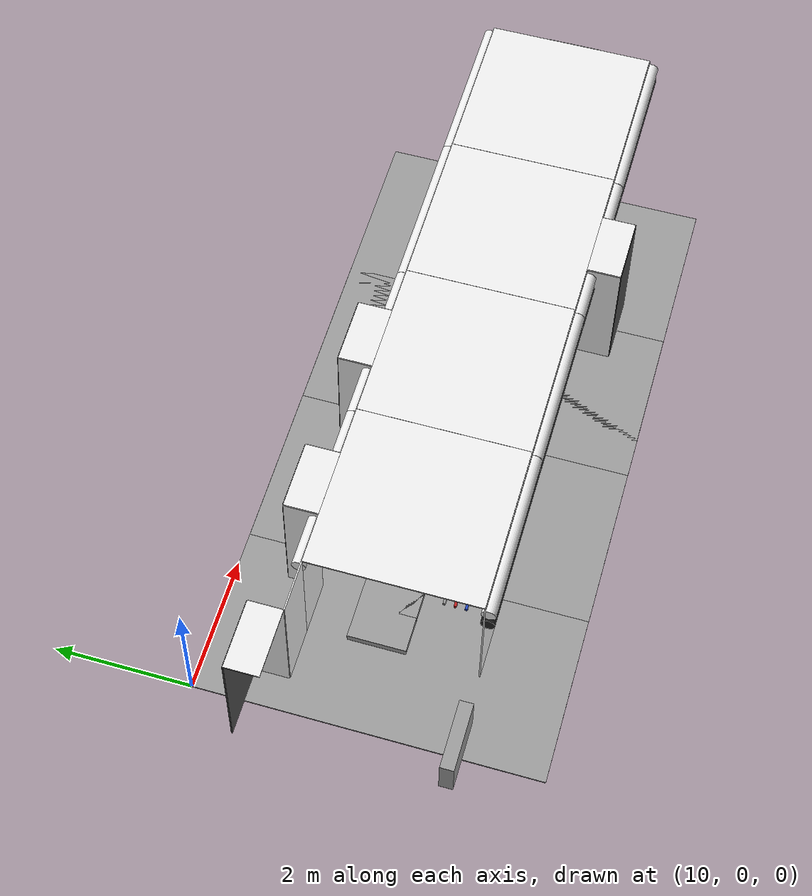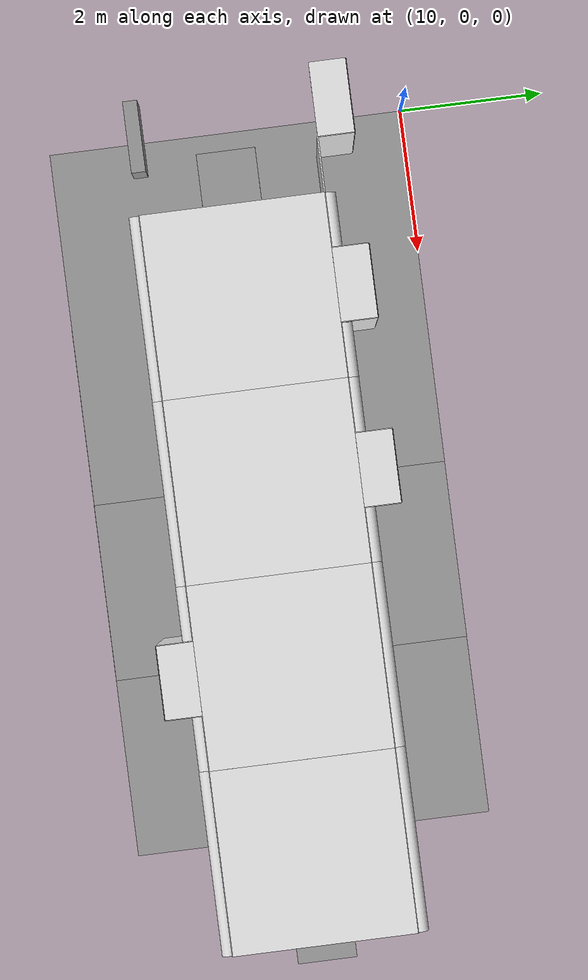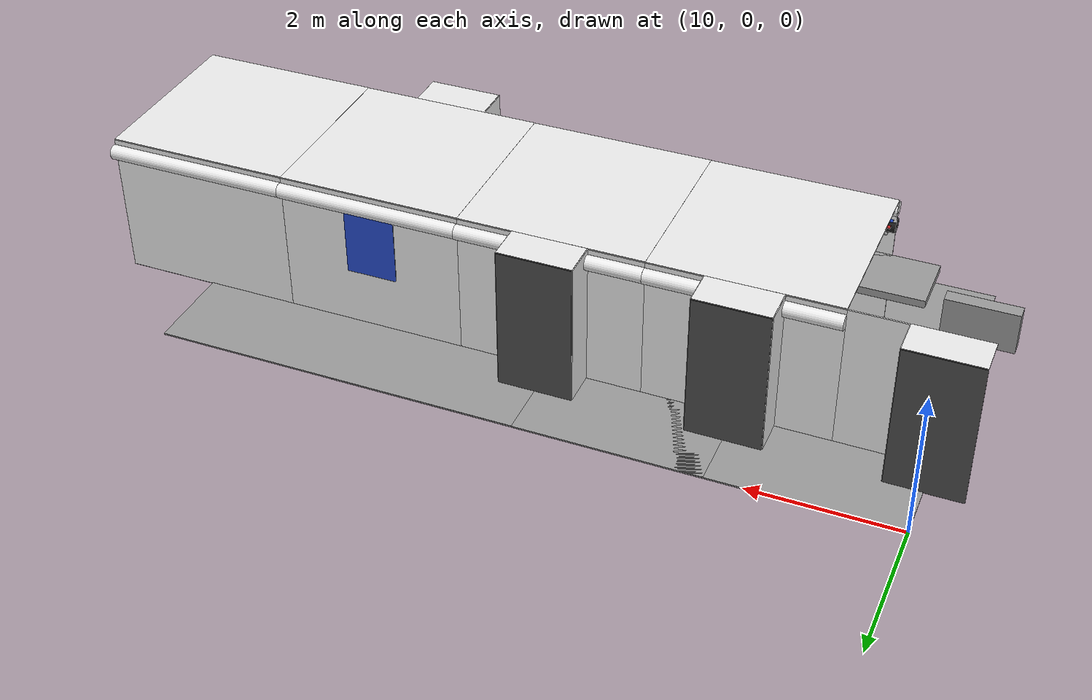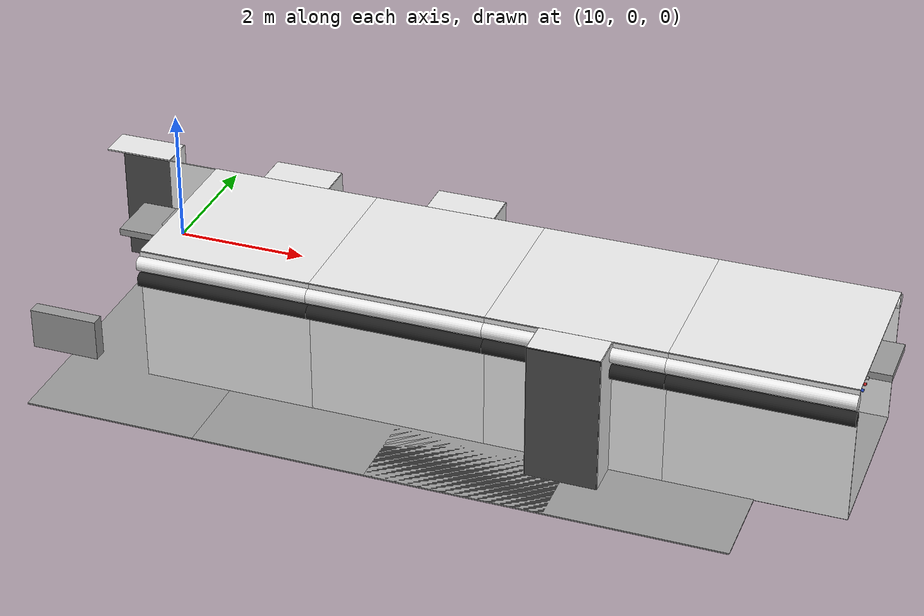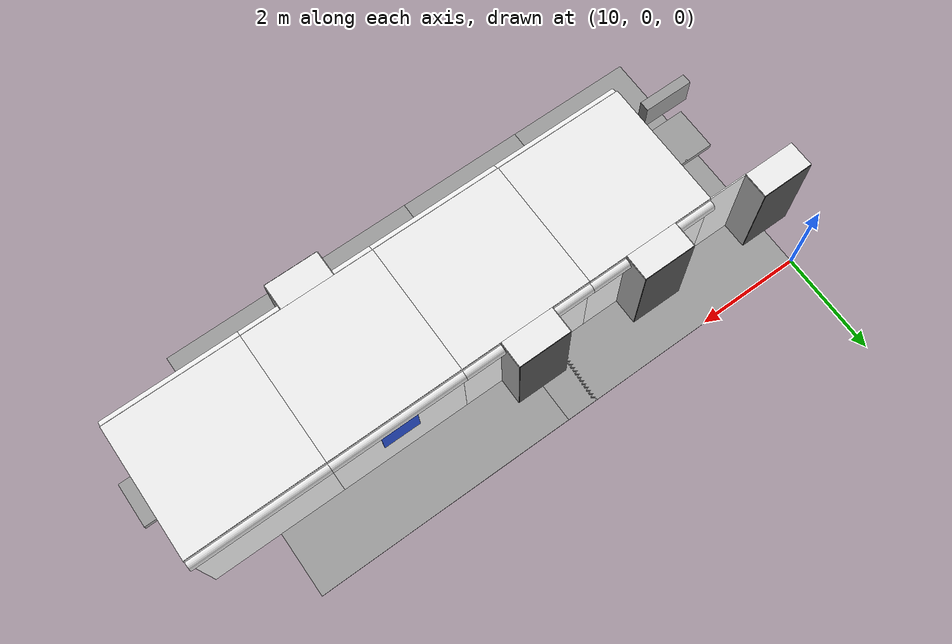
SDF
<sdf version="1.6">
 <world name="default">
  <model name="ceiling_1_4_-1_2_1">
   <pose>11.0 -2.5 1.7 0.0 0.0 -1.57</pose>
   <link name="link_1">
    <visual name="visual">
     <geometry><box><size>0.8 1 0.1</size></box></geometry>
     <material>
      <script><uri>file://media/materials/scripts/gazebo.material</uri><name>Gazebo/Grey</name></script>
     </material>
    </visual>
    <collision name="collision"><geometry><box><size>0.8 1 0.1</size></box></geometry></collision>
   </link>
   <static>1</static>
  </model>
  <model name="wall_left_front_left_4_-1_0_1">
   <static>1</static>
   <pose>10.875 -1.25 1.0 0.0 0.0 0.0</pose>
   <link name="link">
    <collision name="collision"><geometry><box><size>0.75 0.02 2.0</size></box></geometry></collision>
    <visual name="visual">
     <material>
      <script><name>Gazebo/White</name><uri>file://media/materials/scripts/gazebo.material</uri></script>
     </material>
     <geometry><box><size>0.75 0.02 2.0</size></box></geometry>
    </visual>
   </link>
  </model>
  <model name="wall_left_inside_back_4_-1_0_1">
   <static>1</static>
   <pose>10.0 -0.75 1.0 0.0 0.0 0.0</pose>
   <link name="link">
    <collision name="collision"><geometry><box><size>1 0.02 2</size></box></geometry></collision>
    <visual name="visual">
     <material>
      <script><name>Gazebo/DarkGrey</name><uri>file://media/materials/scripts/gazebo.material</uri></script>
     </material>
     <geometry><box><size>1 0.02 2</size></box></geometry>
    </visual>
   </link>
  </model>
  <model name="wall_left_inside_left_4_-1_0_1">
   <static>1</static>
   <pose>10.5 -1.0 1.0 0.0 0.0 -1.57</pose>
   <link name="link">
    <collision name="collision"><geometry><box><size>0.5 0.02 2</size></box></geometry></collision>
    <visual name="visual">
     <material>
      <script><name>Gazebo/White</name><uri>file://media/materials/scripts/gazebo.material</uri></script>
     </material>
     <geometry><box><size>0.5 0.02 2</size></box></geometry>
    </visual>
   </link>
  </model>
  <model name="wall_left_inside_top_4_-1_0_1">
   <static>1</static>
   <pose>10.0 -1.0 2.0 1.57 0.0 0.0</pose>
   <link name="link">
    <collision name="collision"><geometry><box><size>1 0.02 0.5</size></box></geometry></collision>
    <visual name="visual">
     <material>
      <script><name>Gazebo/White</name><uri>file://media/materials/scripts/gazebo.material</uri></script>
     </material>
     <geometry><box><size>1 0.02 0.5</size></box></geometry>
    </visual>
   </link>
  </model>
  <model name="panel_4_-1_0_1">
   <static>1</static>
   <pose>10.0 -3.75 0.44 0.0 0.0 -1.57</pose>
   <link name="link">
    <collision name="collision"><geometry><box><size>0.2 1 0.6</size></box></geometry></collision>
    <visual name="visual">
     <material>
      <script><name>Gazebo/Grey</name><uri>file://media/materials/scripts/gazebo.material</uri></script>
     </material>
     <geometry><box><size>0.2 1 0.6</size></box></geometry>
    </visual>
   </link>
  </model>
  <model name="wall_right_5_-1_0_1">
   <static>1</static>
   <pose>12.5 -3.75 1.0 0.0 0.0 0.0</pose>
   <link name="link">
    <collision name="collision"><geometry><box><size>2.5 0.02 2.0</size></box></geometry></collision>
    <visual name="visual">
     <material>
      <script><name>Gazebo/White</name><uri>file://media/materials/scripts/gazebo.material</uri></script>
     </material>
     <geometry><box><size>2.5 0.02 2.0</size></box></geometry>
    </visual>
   </link>
  </model>
  <model name="wall_top_5_-1_0_1">
   <static>1</static>
   <pose>12.5 -2.5 2.0 1.57 0.0 -1.57</pose>
   <link name="link">
    <collision name="collision"><geometry><box><size>2.5 0.02 2.5</size></box></geometry></collision>
    <visual name="visual">
     <material>
      <script><name>Gazebo/White</name><uri>file://media/materials/scripts/gazebo.material</uri></script>
     </material>
     <geometry><box><size>2.5 0.02 2.5</size></box></geometry>
    </visual>
   </link>
  </model>
  <model name="ceiling_1_5_-1_0_1">
   <pose>12.5 -2.5 1.7 0.0 0.0 -1.57</pose>
   <link name="link_1">
    <visual name="visual">
     <geometry><box><size>0.8 1 0.1</size></box></geometry>
     <material>
      <script><uri>file://media/materials/scripts/gazebo.material</uri><name>Gazebo/Grey</name></script>
     </material>
    </visual>
    <collision name="collision"><geometry><box><size>0.8 1 0.1</size></box></geometry></collision>
   </link>
   <static>1</static>
  </model>
  <model name="ceiling_1_5_-1_1_1">
   <pose>11.5 -2.5 1.7 0.0 0.0 -1.57</pose>
   <link name="link_1">
    <visual name="visual">
     <geometry><box><size>0.8 1 0.1</size></box></geometry>
     <material>
      <script><uri>file://media/materials/scripts/gazebo.material</uri><name>Gazebo/Grey</name></script>
     </material>
    </visual>
    <collision name="collision"><geometry><box><size>0.8 1 0.1</size></box></geometry></collision>
   </link>
   <static>1</static>
  </model>
  <model name="ceiling_1_5_-1_2_1">
   <pose>13.5 -2.5 1.7 0.0 0.0 -1.57</pose>
   <link name="link_1">
    <visual name="visual">
     <geometry><box><size>0.8 1 0.1</size></box></geometry>
     <material>
      <script><uri>file://media/materials/scripts/gazebo.material</uri><name>Gazebo/Grey</name></script>
     </material>
    </visual>
    <collision name="collision"><geometry><box><size>0.8 1 0.1</size></box></geometry></collision>
   </link>
   <static>1</static>
  </model>
  <model name="white_pipe_left_5_-1_0_1">
   <static>1</static>
   <pose>12.5 -2.5 1.84 0.0 0.0 -1.57</pose>
   <link name="link_0">
    <visual name="visual">
     <pose>-1.3 0 0 1.57 0 0</pose>
     <geometry><cylinder><radius>0.1</radius><length>2.5</length></cylinder></geometry>
     <material>
      <script><uri>file://media/materials/scripts/gazebo.material</uri><name>Gazebo/White</name></script>
     </material>
    </visual>
    <collision name="collision">
     <pose>-1.3 0 0 1.57 0 0</pose>
     <geometry><cylinder><radius>0.1</radius><length>2.5</length></cylinder></geometry>
    </collision>
   </link>
  </model>
  <model name="white_pipe_right_5_-1_0_1">
   <static>1</static>
   <pose>12.5 -2.5 1.84 0.0 0.0 -1.57</pose>
   <link name="link_0">
    <visual name="visual">
     <pose>1.3 0 0 1.57 0 0</pose>
     <geometry><cylinder><radius>0.1</radius><length>2.5</length></cylinder></geometry>
     <material>
      <script><uri>file://media/materials/scripts/gazebo.material</uri><name>Gazebo/White</name></script>
     </material>
    </visual>
    <collision name="collision">
     <pose>1.3 0 0 1.57 0 0</pose>
     <geometry><cylinder><radius>0.1</radius><length>2.5</length></cylinder></geometry>
    </collision>
   </link>
  </model>
  <model name="black_pipe_right_5_-1_0_1">
   <static>1</static>
   <pose>12.5 -2.5 1.84 0.0 0.0 -1.57</pose>
   <link name="link_0">
    <visual name="visual">
     <pose>1.3 0 -0.25 1.57 0 0</pose>
     <geometry><cylinder><radius>0.1</radius><length>2.5</length></cylinder></geometry>
     <material>
      <script><uri>file://media/materials/scripts/gazebo.material</uri><name>Gazebo/Black</name></script>
     </material>
    </visual>
    <collision name="collision">
     <pose>1.3 0 -0.25 1.57 0 0</pose>
     <geometry><cylinder><radius>0.1</radius><length>2.5</length></cylinder></geometry>
    </collision>
   </link>
  </model>
  <model name="grey_pipe_right_5_-1_0_1">
   <static>1</static>
   <pose>12.5 -2.5 1.84 0.0 0.0 -1.57</pose>
   <link name="link_0">
    <visual name="visual">
     <pose>0.7 0 0 1.57 0 0</pose>
     <geometry><cylinder><radius>0.02</radius><length>2.5</length></cylinder></geometry>
     <material>
      <script><uri>file://media/materials/scripts/gazebo.material</uri><name>Gazebo/Grey</name></script>
     </material>
    </visual>
    <collision name="collision">
     <pose>0.7 0 0 1.57 0 0</pose>
     <geometry><cylinder><radius>0.02</radius><length>2.5</length></cylinder></geometry>
    </collision>
   </link>
  </model>
  <model name="red_pipe_right_5_-1_0_1">
   <static>1</static>
   <pose>12.5 -2.5 1.84 0.0 0.0 -1.57</pose>
   <link name="link_0">
    <visual name="visual">
     <pose>0.85 0 0 1.57 0 0</pose>
     <geometry><cylinder><radius>0.02</radius><length>2.5</length></cylinder></geometry>
     <material>
      <script><uri>file://media/materials/scripts/gazebo.material</uri><name>Gazebo/Red</name></script>
     </material>
    </visual>
    <collision name="collision">
     <pose>0.85 0 0 1.57 0 0</pose>
     <geometry><cylinder><radius>0.02</radius><length>2.5</length></cylinder></geometry>
    </collision>
   </link>
  </model>
  <model name="blue_pipe_right_5_-1_0_1">
   <static>1</static>
   <pose>12.5 -2.5 1.84 0.0 0.0 -1.57</pose>
   <link name="link_0">
    <visual name="visual">
     <pose>1 0 0 1.57 0 0</pose>
     <geometry><cylinder><radius>0.02</radius><length>2.5</length></cylinder></geometry>
     <material>
      <script><uri>file://media/materials/scripts/gazebo.material</uri><name>Gazebo/Blue</name></script>
     </material>
    </visual>
    <collision name="collision">
     <pose>1 0 0 1.57 0 0</pose>
     <geometry><cylinder><radius>0.02</radius><length>2.5</length></cylinder></geometry>
    </collision>
   </link>
  </model>
  <model name="wall_left_front_left_5_-1_0_1">
   <static>1</static>
   <pose>13.375 -1.25 1.0 0.0 0.0 0.0</pose>
   <link name="link">
    <collision name="collision"><geometry><box><size>0.75 0.02 2.0</size></box></geometry></collision>
    <visual name="visual">
     <material>
      <script><name>Gazebo/White</name><uri>file://media/materials/scripts/gazebo.material</uri></script>
     </material>
     <geometry><box><size>0.75 0.02 2.0</size></box></geometry>
    </visual>
   </link>
  </model>
  <model name="wall_left_front_right_5_-1_0_1">
   <static>1</static>
   <pose>11.625 -1.25 1.0 0.0 0.0 0.0</pose>
   <link name="link">
    <collision name="collision"><geometry><box><size>0.75 0.02 2.0</size></box></geometry></collision>
    <visual name="visual">
     <material>
      <script><name>Gazebo/White</name><uri>file://media/materials/scripts/gazebo.material</uri></script>
     </material>
     <geometry><box><size>0.75 0.02 2.0</size></box></geometry>
    </visual>
   </link>
  </model>
  <model name="wall_left_front_up_5_-1_0_1">
   <static>1</static>
   <pose>12.5 -1.25 2.0 0.0 0.0 0.0</pose>
   <link name="link">
    <collision name="collision"><geometry><box><size>1.0 0.02 0.001</size></box></geometry></collision>
    <visual name="visual">
     <material>
      <script><name>Gazebo/White</name><uri>file://media/materials/scripts/gazebo.material</uri></script>
     </material>
     <geometry><box><size>1.0 0.02 0.001</size></box></geometry>
    </visual>
   </link>
  </model>
  <model name="wall_left_inside_back_5_-1_0_1">
   <static>1</static>
   <pose>12.5 -0.75 1.0 0.0 0.0 0.0</pose>
   <link name="link">
    <collision name="collision"><geometry><box><size>1 0.02 2</size></box></geometry></collision>
    <visual name="visual">
     <material>
      <script><name>Gazebo/DarkGrey</name><uri>file://media/materials/scripts/gazebo.material</uri></script>
     </material>
     <geometry><box><size>1 0.02 2</size></box></geometry>
    </visual>
   </link>
  </model>
  <model name="wall_left_inside_left_5_-1_0_1">
   <static>1</static>
   <pose>13.0 -1.0 1.0 0.0 0.0 -1.57</pose>
   <link name="link">
    <collision name="collision"><geometry><box><size>0.5 0.02 2</size></box></geometry></collision>
    <visual name="visual">
     <material>
      <script><name>Gazebo/White</name><uri>file://media/materials/scripts/gazebo.material</uri></script>
     </material>
     <geometry><box><size>0.5 0.02 2</size></box></geometry>
    </visual>
   </link>
  </model>
  <model name="wall_left_inside_right_5_-1_0_1">
   <static>1</static>
   <pose>12.0 -1.0 1.0 0.0 0.0 -1.57</pose>
   <link name="link">
    <collision name="collision"><geometry><box><size>0.5 0.02 2</size></box></geometry></collision>
    <visual name="visual">
     <material>
      <script><name>Gazebo/White</name><uri>file://media/materials/scripts/gazebo.material</uri></script>
     </material>
     <geometry><box><size>0.5 0.02 2</size></box></geometry>
    </visual>
   </link>
  </model>
  <model name="wall_left_inside_top_5_-1_0_1">
   <static>1</static>
   <pose>12.5 -1.0 2.0 1.57 0.0 0.0</pose>
   <link name="link">
    <collision name="collision"><geometry><box><size>1 0.02 0.5</size></box></geometry></collision>
    <visual name="visual">
     <material>
      <script><name>Gazebo/White</name><uri>file://media/materials/scripts/gazebo.material</uri></script>
     </material>
     <geometry><box><size>1 0.02 0.5</size></box></geometry>
    </visual>
   </link>
  </model>
  <model name="wall_bottom_5_-1_0_1">
   <static>1</static>
   <pose>12.5 -2.5 0.0 0.0 0.0 -1.57</pose>
   <link name="link">
    <collision name="collision"><geometry><box><size>5.0 5.0 0.02</size></box></geometry></collision>
    <visual name="visual">
     <material>
      <script><name>Gazebo/Grey</name><uri>file://media/materials/scripts/gazebo.material</uri></script>
     </material>
     <geometry><box><size>5.0 5.0 0.02</size></box></geometry>
    </visual>
   </link>
  </model>
  <model name="wall_right_6_-1_0_1">
   <static>1</static>
   <pose>15.0 -3.75 1.0 0.0 0.0 0.0</pose>
   <link name="link">
    <collision name="collision"><geometry><box><size>2.5 0.02 2.0</size></box></geometry></collision>
    <visual name="visual">
     <material>
      <script><name>Gazebo/White</name><uri>file://media/materials/scripts/gazebo.material</uri></script>
     </material>
     <geometry><box><size>2.5 0.02 2.0</size></box></geometry>
    </visual>
   </link>
  </model>
  <model name="wall_top_6_-1_0_1">
   <static>1</static>
   <pose>15.0 -2.5 2.0 1.57 0.0 -1.57</pose>
   <link name="link">
    <collision name="collision"><geometry><box><size>2.5 0.02 2.5</size></box></geometry></collision>
    <visual name="visual">
     <material>
      <script><name>Gazebo/White</name><uri>file://media/materials/scripts/gazebo.material</uri></script>
     </material>
     <geometry><box><size>2.5 0.02 2.5</size></box></geometry>
    </visual>
   </link>
  </model>
  <model name="ceiling_1_6_-1_0_1">
   <pose>15.0 -2.5 1.7 0.0 0.0 -1.57</pose>
   <link name="link_1">
    <visual name="visual">
     <geometry><box><size>0.8 1 0.1</size></box></geometry>
     <material>
      <script><uri>file://media/materials/scripts/gazebo.material</uri><name>Gazebo/Grey</name></script>
     </material>
    </visual>
    <collision name="collision"><geometry><box><size>0.8 1 0.1</size></box></geometry></collision>
   </link>
   <static>1</static>
  </model>
  <model name="ceiling_1_6_-1_1_1">
   <pose>14.0 -2.5 1.7 0.0 0.0 -1.57</pose>
   <link name="link_1">
    <visual name="visual">
     <geometry><box><size>0.8 1 0.1</size></box></geometry>
     <material>
      <script><uri>file://media/materials/scripts/gazebo.material</uri><name>Gazebo/Grey</name></script>
     </material>
    </visual>
    <collision name="collision"><geometry><box><size>0.8 1 0.1</size></box></geometry></collision>
   </link>
   <static>1</static>
  </model>
  <model name="ceiling_1_6_-1_2_1">
   <pose>16.0 -2.5 1.7 0.0 0.0 -1.57</pose>
   <link name="link_1">
    <visual name="visual">
     <geometry><box><size>0.8 1 0.1</size></box></geometry>
     <material>
      <script><uri>file://media/materials/scripts/gazebo.material</uri><name>Gazebo/Grey</name></script>
     </material>
    </visual>
    <collision name="collision"><geometry><box><size>0.8 1 0.1</size></box></geometry></collision>
   </link>
   <static>1</static>
  </model>
  <model name="white_pipe_left_6_-1_0_1">
   <static>1</static>
   <pose>15.0 -2.5 1.84 0.0 0.0 -1.57</pose>
   <link name="link_0">
    <visual name="visual">
     <pose>-1.3 0 0 1.57 0 0</pose>
     <geometry><cylinder><radius>0.1</radius><length>2.5</length></cylinder></geometry>
     <material>
      <script><uri>file://media/materials/scripts/gazebo.material</uri><name>Gazebo/White</name></script>
     </material>
    </visual>
    <collision name="collision">
     <pose>-1.3 0 0 1.57 0 0</pose>
     <geometry><cylinder><radius>0.1</radius><length>2.5</length></cylinder></geometry>
    </collision>
   </link>
  </model>
  <model name="white_pipe_right_6_-1_0_1">
   <static>1</static>
   <pose>15.0 -2.5 1.84 0.0 0.0 -1.57</pose>
   <link name="link_0">
    <visual name="visual">
     <pose>1.3 0 0 1.57 0 0</pose>
     <geometry><cylinder><radius>0.1</radius><length>2.5</length></cylinder></geometry>
     <material>
      <script><uri>file://media/materials/scripts/gazebo.material</uri><name>Gazebo/White</name></script>
     </material>
    </visual>
    <collision name="collision">
     <pose>1.3 0 0 1.57 0 0</pose>
     <geometry><cylinder><radius>0.1</radius><length>2.5</length></cylinder></geometry>
    </collision>
   </link>
  </model>
  <model name="black_pipe_right_6_-1_0_1">
   <static>1</static>
   <pose>15.0 -2.5 1.84 0.0 0.0 -1.57</pose>
   <link name="link_0">
    <visual name="visual">
     <pose>1.3 0 -0.25 1.57 0 0</pose>
     <geometry><cylinder><radius>0.1</radius><length>2.5</length></cylinder></geometry>
     <material>
      <script><uri>file://media/materials/scripts/gazebo.material</uri><name>Gazebo/Black</name></script>
     </material>
    </visual>
    <collision name="collision">
     <pose>1.3 0 -0.25 1.57 0 0</pose>
     <geometry><cylinder><radius>0.1</radius><length>2.5</length></cylinder></geometry>
    </collision>
   </link>
  </model>
  <model name="grey_pipe_right_6_-1_0_1">
   <static>1</static>
   <pose>15.0 -2.5 1.84 0.0 0.0 -1.57</pose>
   <link name="link_0">
    <visual name="visual">
     <pose>0.7 0 0 1.57 0 0</pose>
     <geometry><cylinder><radius>0.02</radius><length>2.5</length></cylinder></geometry>
     <material>
      <script><uri>file://media/materials/scripts/gazebo.material</uri><name>Gazebo/Grey</name></script>
     </material>
    </visual>
    <collision name="collision">
     <pose>0.7 0 0 1.57 0 0</pose>
     <geometry><cylinder><radius>0.02</radius><length>2.5</length></cylinder></geometry>
    </collision>
   </link>
  </model>
  <model name="red_pipe_right_6_-1_0_1">
   <static>1</static>
   <pose>15.0 -2.5 1.84 0.0 0.0 -1.57</pose>
   <link name="link_0">
    <visual name="visual">
     <pose>0.85 0 0 1.57 0 0</pose>
     <geometry><cylinder><radius>0.02</radius><length>2.5</length></cylinder></geometry>
     <material>
      <script><uri>file://media/materials/scripts/gazebo.material</uri><name>Gazebo/Red</name></script>
     </material>
    </visual>
    <collision name="collision">
     <pose>0.85 0 0 1.57 0 0</pose>
     <geometry><cylinder><radius>0.02</radius><length>2.5</length></cylinder></geometry>
    </collision>
   </link>
  </model>
  <model name="blue_pipe_right_6_-1_0_1">
   <static>1</static>
   <pose>15.0 -2.5 1.84 0.0 0.0 -1.57</pose>
   <link name="link_0">
    <visual name="visual">
     <pose>1 0 0 1.57 0 0</pose>
     <geometry><cylinder><radius>0.02</radius><length>2.5</length></cylinder></geometry>
     <material>
      <script><uri>file://media/materials/scripts/gazebo.material</uri><name>Gazebo/Blue</name></script>
     </material>
    </visual>
    <collision name="collision">
     <pose>1 0 0 1.57 0 0</pose>
     <geometry><cylinder><radius>0.02</radius><length>2.5</length></cylinder></geometry>
    </collision>
   </link>
  </model>
  <model name="wall_left_front_left_6_-1_0_1">
   <static>1</static>
   <pose>15.875 -1.25 1.0 0.0 0.0 0.0</pose>
   <link name="link">
    <collision name="collision"><geometry><box><size>0.75 0.02 2.0</size></box></geometry></collision>
    <visual name="visual">
     <material>
      <script><name>Gazebo/White</name><uri>file://media/materials/scripts/gazebo.material</uri></script>
     </material>
     <geometry><box><size>0.75 0.02 2.0</size></box></geometry>
    </visual>
   </link>
  </model>
  <model name="wall_left_front_right_6_-1_0_1">
   <static>1</static>
   <pose>14.125 -1.25 1.0 0.0 0.0 0.0</pose>
   <link name="link">
    <collision name="collision"><geometry><box><size>0.75 0.02 2.0</size></box></geometry></collision>
    <visual name="visual">
     <material>
      <script><name>Gazebo/White</name><uri>file://media/materials/scripts/gazebo.material</uri></script>
     </material>
     <geometry><box><size>0.75 0.02 2.0</size></box></geometry>
    </visual>
   </link>
  </model>
  <model name="wall_left_front_up_6_-1_0_1">
   <static>1</static>
   <pose>15.0 -1.25 2.0 0.0 0.0 0.0</pose>
   <link name="link">
    <collision name="collision"><geometry><box><size>1.0 0.02 0.001</size></box></geometry></collision>
    <visual name="visual">
     <material>
      <script><name>Gazebo/White</name><uri>file://media/materials/scripts/gazebo.material</uri></script>
     </material>
     <geometry><box><size>1.0 0.02 0.001</size></box></geometry>
    </visual>
   </link>
  </model>
  <model name="wall_left_inside_back_6_-1_0_1">
   <static>1</static>
   <pose>15.0 -0.75 1.0 0.0 0.0 0.0</pose>
   <link name="link">
    <collision name="collision"><geometry><box><size>1 0.02 2</size></box></geometry></collision>
    <visual name="visual">
     <material>
      <script><name>Gazebo/DarkGrey</name><uri>file://media/materials/scripts/gazebo.material</uri></script>
     </material>
     <geometry><box><size>1 0.02 2</size></box></geometry>
    </visual>
   </link>
  </model>
  <model name="wall_left_inside_left_6_-1_0_1">
   <static>1</static>
   <pose>15.5 -1.0 1.0 0.0 0.0 -1.57</pose>
   <link name="link">
    <collision name="collision"><geometry><box><size>0.5 0.02 2</size></box></geometry></collision>
    <visual name="visual">
     <material>
      <script><name>Gazebo/White</name><uri>file://media/materials/scripts/gazebo.material</uri></script>
     </material>
     <geometry><box><size>0.5 0.02 2</size></box></geometry>
    </visual>
   </link>
  </model>
  <model name="wall_left_inside_right_6_-1_0_1">
   <static>1</static>
   <pose>14.5 -1.0 1.0 0.0 0.0 -1.57</pose>
   <link name="link">
    <collision name="collision"><geometry><box><size>0.5 0.02 2</size></box></geometry></collision>
    <visual name="visual">
     <material>
      <script><name>Gazebo/White</name><uri>file://media/materials/scripts/gazebo.material</uri></script>
     </material>
     <geometry><box><size>0.5 0.02 2</size></box></geometry>
    </visual>
   </link>
  </model>
  <model name="wall_left_inside_top_6_-1_0_1">
   <static>1</static>
   <pose>15.0 -1.0 2.0 1.57 0.0 0.0</pose>
   <link name="link">
    <collision name="collision"><geometry><box><size>1 0.02 0.5</size></box></geometry></collision>
    <visual name="visual">
     <material>
      <script><name>Gazebo/White</name><uri>file://media/materials/scripts/gazebo.material</uri></script>
     </material>
     <geometry><box><size>1 0.02 0.5</size></box></geometry>
    </visual>
   </link>
  </model>
  <model name="wall_bottom_6_-1_0_1">
   <static>1</static>
   <pose>15.0 -2.5 0.0 0.0 0.0 -1.57</pose>
   <link name="link">
    <collision name="collision"><geometry><box><size>5.0 5.0 0.02</size></box></geometry></collision>
    <visual name="visual">
     <material>
      <script><name>Gazebo/Grey</name><uri>file://media/materials/scripts/gazebo.material</uri></script>
     </material>
     <geometry><box><size>5.0 5.0 0.02</size></box></geometry>
    </visual>
   </link>
  </model>
  <model name="wall_left_7_-1_0_1">
   <static>1</static>
   <pose>17.5 -1.25 1.0 0.0 0.0 0.0</pose>
   <link name="link">
    <collision name="collision"><geometry><box><size>2.5 0.02 2.0</size></box></geometry></collision>
    <visual name="visual">
     <material>
      <script><name>Gazebo/White</name><uri>file://media/materials/scripts/gazebo.material</uri></script>
     </material>
     <geometry><box><size>2.5 0.02 2.0</size></box></geometry>
    </visual>
   </link>
  </model>
  <model name="wall_top_7_-1_0_1">
   <static>1</static>
   <pose>17.5 -2.5 2.0 1.57 0.0 -1.57</pose>
   <link name="link">
    <collision name="collision"><geometry><box><size>2.5 0.02 2.5</size></box></geometry></collision>
    <visual name="visual">
     <material>
      <script><name>Gazebo/White</name><uri>file://media/materials/scripts/gazebo.material</uri></script>
     </material>
     <geometry><box><size>2.5 0.02 2.5</size></box></geometry>
    </visual>
   </link>
  </model>
  <model name="ceiling_1_7_-1_0_1">
   <pose>17.5 -2.5 1.7 0.0 0.0 -1.57</pose>
   <link name="link_1">
    <visual name="visual">
     <geometry><box><size>0.8 1 0.1</size></box></geometry>
     <material>
      <script><uri>file://media/materials/scripts/gazebo.material</uri><name>Gazebo/Grey</name></script>
     </material>
    </visual>
    <collision name="collision"><geometry><box><size>0.8 1 0.1</size></box></geometry></collision>
   </link>
   <static>1</static>
  </model>
  <model name="ceiling_1_7_-1_1_1">
   <pose>16.5 -2.5 1.7 0.0 0.0 -1.57</pose>
   <link name="link_1">
    <visual name="visual">
     <geometry><box><size>0.8 1 0.1</size></box></geometry>
     <material>
      <script><uri>file://media/materials/scripts/gazebo.material</uri><name>Gazebo/Grey</name></script>
     </material>
    </visual>
    <collision name="collision"><geometry><box><size>0.8 1 0.1</size></box></geometry></collision>
   </link>
   <static>1</static>
  </model>
  <model name="ceiling_1_7_-1_2_1">
   <pose>18.5 -2.5 1.7 0.0 0.0 -1.57</pose>
   <link name="link_1">
    <visual name="visual">
     <geometry><box><size>0.8 1 0.1</size></box></geometry>
     <material>
      <script><uri>file://media/materials/scripts/gazebo.material</uri><name>Gazebo/Grey</name></script>
     </material>
    </visual>
    <collision name="collision"><geometry><box><size>0.8 1 0.1</size></box></geometry></collision>
   </link>
   <static>1</static>
  </model>
  <model name="white_pipe_left_7_-1_0_1">
   <static>1</static>
   <pose>17.5 -2.5 1.84 0.0 0.0 -1.57</pose>
   <link name="link_0">
    <visual name="visual">
     <pose>-1.3 0 0 1.57 0 0</pose>
     <geometry><cylinder><radius>0.1</radius><length>2.5</length></cylinder></geometry>
     <material>
      <script><uri>file://media/materials/scripts/gazebo.material</uri><name>Gazebo/White</name></script>
     </material>
    </visual>
    <collision name="collision">
     <pose>-1.3 0 0 1.57 0 0</pose>
     <geometry><cylinder><radius>0.1</radius><length>2.5</length></cylinder></geometry>
    </collision>
   </link>
  </model>
  <model name="white_pipe_right_7_-1_0_1">
   <static>1</static>
   <pose>17.5 -2.5 1.84 0.0 0.0 -1.57</pose>
   <link name="link_0">
    <visual name="visual">
     <pose>1.3 0 0 1.57 0 0</pose>
     <geometry><cylinder><radius>0.1</radius><length>2.5</length></cylinder></geometry>
     <material>
      <script><uri>file://media/materials/scripts/gazebo.material</uri><name>Gazebo/White</name></script>
     </material>
    </visual>
    <collision name="collision">
     <pose>1.3 0 0 1.57 0 0</pose>
     <geometry><cylinder><radius>0.1</radius><length>2.5</length></cylinder></geometry>
    </collision>
   </link>
  </model>
  <model name="black_pipe_right_7_-1_0_1">
   <static>1</static>
   <pose>17.5 -2.5 1.84 0.0 0.0 -1.57</pose>
   <link name="link_0">
    <visual name="visual">
     <pose>1.3 0 -0.25 1.57 0 0</pose>
     <geometry><cylinder><radius>0.1</radius><length>2.5</length></cylinder></geometry>
     <material>
      <script><uri>file://media/materials/scripts/gazebo.material</uri><name>Gazebo/Black</name></script>
     </material>
    </visual>
    <collision name="collision">
     <pose>1.3 0 -0.25 1.57 0 0</pose>
     <geometry><cylinder><radius>0.1</radius><length>2.5</length></cylinder></geometry>
    </collision>
   </link>
  </model>
  <model name="grey_pipe_right_7_-1_0_1">
   <static>1</static>
   <pose>17.5 -2.5 1.84 0.0 0.0 -1.57</pose>
   <link name="link_0">
    <visual name="visual">
     <pose>0.7 0 0 1.57 0 0</pose>
     <geometry><cylinder><radius>0.02</radius><length>2.5</length></cylinder></geometry>
     <material>
      <script><uri>file://media/materials/scripts/gazebo.material</uri><name>Gazebo/Grey</name></script>
     </material>
    </visual>
    <collision name="collision">
     <pose>0.7 0 0 1.57 0 0</pose>
     <geometry><cylinder><radius>0.02</radius><length>2.5</length></cylinder></geometry>
    </collision>
   </link>
  </model>
  <model name="red_pipe_right_7_-1_0_1">
   <static>1</static>
   <pose>17.5 -2.5 1.84 0.0 0.0 -1.57</pose>
   <link name="link_0">
    <visual name="visual">
     <pose>0.85 0 0 1.57 0 0</pose>
     <geometry><cylinder><radius>0.02</radius><length>2.5</length></cylinder></geometry>
     <material>
      <script><uri>file://media/materials/scripts/gazebo.material</uri><name>Gazebo/Red</name></script>
     </material>
    </visual>
    <collision name="collision">
     <pose>0.85 0 0 1.57 0 0</pose>
     <geometry><cylinder><radius>0.02</radius><length>2.5</length></cylinder></geometry>
    </collision>
   </link>
  </model>
  <model name="blue_pipe_right_7_-1_0_1">
   <static>1</static>
   <pose>17.5 -2.5 1.84 0.0 0.0 -1.57</pose>
   <link name="link_0">
    <visual name="visual">
     <pose>1 0 0 1.57 0 0</pose>
     <geometry><cylinder><radius>0.02</radius><length>2.5</length></cylinder></geometry>
     <material>
      <script><uri>file://media/materials/scripts/gazebo.material</uri><name>Gazebo/Blue</name></script>
     </material>
    </visual>
    <collision name="collision">
     <pose>1 0 0 1.57 0 0</pose>
     <geometry><cylinder><radius>0.02</radius><length>2.5</length></cylinder></geometry>
    </collision>
   </link>
  </model>
  <model name="panel_7_-1_0_1">
   <static>1</static>
   <pose>17.5 -1.25 1.3 0.0 0.0 -1.57</pose>
   <link name="link">
    <collision name="collision"><geometry><box><size>0.04 0.7 1</size></box></geometry></collision>
    <visual name="visual">
     <material>
      <script><name>Gazebo/Blue</name><uri>file://media/materials/scripts/gazebo.material</uri></script>
     </material>
     <geometry><box><size>0.04 0.7 1</size></box></geometry>
    </visual>
   </link>
  </model>
  <model name="wall_right_front_left_7_-1_0_1">
   <static>1</static>
   <pose>18.375 -3.75 1.0 0.0 0.0 0.0</pose>
   <link name="link">
    <collision name="collision"><geometry><box><size>0.75 0.02 2.0</size></box></geometry></collision>
    <visual name="visual">
     <material>
      <script><name>Gazebo/White</name><uri>file://media/materials/scripts/gazebo.material</uri></script>
     </material>
     <geometry><box><size>0.75 0.02 2.0</size></box></geometry>
    </visual>
   </link>
  </model>
  <model name="wall_right_front_right_7_-1_0_1">
   <static>1</static>
   <pose>16.625 -3.75 1.0 0.0 0.0 0.0</pose>
   <link name="link">
    <collision name="collision"><geometry><box><size>0.75 0.02 2.0</size></box></geometry></collision>
    <visual name="visual">
     <material>
      <script><name>Gazebo/White</name><uri>file://media/materials/scripts/gazebo.material</uri></script>
     </material>
     <geometry><box><size>0.75 0.02 2.0</size></box></geometry>
    </visual>
   </link>
  </model>
  <model name="wall_right_front_up_7_-1_0_1">
   <static>1</static>
   <pose>17.5 -3.75 2.0 0.0 0.0 0.0</pose>
   <link name="link">
    <collision name="collision"><geometry><box><size>1.0 0.02 0.001</size></box></geometry></collision>
    <visual name="visual">
     <material>
      <script><name>Gazebo/White</name><uri>file://media/materials/scripts/gazebo.material</uri></script>
     </material>
     <geometry><box><size>1.0 0.02 0.001</size></box></geometry>
    </visual>
   </link>
  </model>
  <model name="wall_right_inside_back_7_-1_0_1">
   <static>1</static>
   <pose>17.5 -4.25 1.0 0.0 0.0 0.0</pose>
   <link name="link">
    <collision name="collision"><geometry><box><size>1 0.02 2</size></box></geometry></collision>
    <visual name="visual">
     <material>
      <script><name>Gazebo/DarkGrey</name><uri>file://media/materials/scripts/gazebo.material</uri></script>
     </material>
     <geometry><box><size>1 0.02 2</size></box></geometry>
    </visual>
   </link>
  </model>
  <model name="wall_right_inside_left_7_-1_0_1">
   <static>1</static>
   <pose>18.0 -4.0 1.0 0.0 0.0 -1.57</pose>
   <link name="link">
    <collision name="collision"><geometry><box><size>0.5 0.02 2</size></box></geometry></collision>
    <visual name="visual">
     <material>
      <script><name>Gazebo/White</name><uri>file://media/materials/scripts/gazebo.material</uri></script>
     </material>
     <geometry><box><size>0.5 0.02 2</size></box></geometry>
    </visual>
   </link>
  </model>
  <model name="wall_right_inside_right_7_-1_0_1">
   <static>1</static>
   <pose>17.0 -4.0 1.0 0.0 0.0 -1.57</pose>
   <link name="link">
    <collision name="collision"><geometry><box><size>0.5 0.02 2</size></box></geometry></collision>
    <visual name="visual">
     <material>
      <script><name>Gazebo/White</name><uri>file://media/materials/scripts/gazebo.material</uri></script>
     </material>
     <geometry><box><size>0.5 0.02 2</size></box></geometry>
    </visual>
   </link>
  </model>
  <model name="wall_right_inside_top_7_-1_0_1">
   <static>1</static>
   <pose>17.5 -4.0 2.0 1.57 0.0 0.0</pose>
   <link name="link">
    <collision name="collision"><geometry><box><size>1 0.02 0.5</size></box></geometry></collision>
    <visual name="visual">
     <material>
      <script><name>Gazebo/White</name><uri>file://media/materials/scripts/gazebo.material</uri></script>
     </material>
     <geometry><box><size>1 0.02 0.5</size></box></geometry>
    </visual>
   </link>
  </model>
  <model name="wall_bottom_7_-1_0_1">
   <static>1</static>
   <pose>17.5 -2.5 0.0 0.0 0.0 -1.57</pose>
   <link name="link">
    <collision name="collision"><geometry><box><size>5.0 5.0 0.02</size></box></geometry></collision>
    <visual name="visual">
     <material>
      <script><name>Gazebo/Grey</name><uri>file://media/materials/scripts/gazebo.material</uri></script>
     </material>
     <geometry><box><size>5.0 5.0 0.02</size></box></geometry>
    </visual>
   </link>
  </model>
  <model name="wall_right_8_-1_0_4">
   <static>1</static>
   <pose>20.0 -3.75 1.0 0.0 0.0 0.0</pose>
   <link name="link">
    <collision name="collision"><geometry><box><size>2.5 0.02 2.0</size></box></geometry></collision>
    <visual name="visual">
     <material>
      <script><name>Gazebo/White</name><uri>file://media/materials/scripts/gazebo.material</uri></script>
     </material>
     <geometry><box><size>2.5 0.02 2.0</size></box></geometry>
    </visual>
   </link>
  </model>
  <model name="wall_left_8_-1_0_4">
   <static>1</static>
   <pose>20.0 -1.25 1.0 0.0 0.0 0.0</pose>
   <link name="link">
    <collision name="collision"><geometry><box><size>2.5 0.02 2.0</size></box></geometry></collision>
    <visual name="visual">
     <material>
      <script><name>Gazebo/White</name><uri>file://media/materials/scripts/gazebo.material</uri></script>
     </material>
     <geometry><box><size>2.5 0.02 2.0</size></box></geometry>
    </visual>
   </link>
  </model>
  <model name="wall_top_8_-1_0_4">
   <static>1</static>
   <pose>20.0 -2.5 2.0 1.57 0.0 -1.57</pose>
   <link name="link">
    <collision name="collision"><geometry><box><size>2.5 0.02 2.5</size></box></geometry></collision>
    <visual name="visual">
     <material>
      <script><name>Gazebo/White</name><uri>file://media/materials/scripts/gazebo.material</uri></script>
     </material>
     <geometry><box><size>2.5 0.02 2.5</size></box></geometry>
    </visual>
   </link>
  </model>
  <model name="ceiling_1_8_-1_0_4">
   <pose>20.0 -2.5 1.7 0.0 0.0 -1.57</pose>
   <link name="link_1">
    <visual name="visual">
     <geometry><box><size>0.8 1 0.1</size></box></geometry>
     <material>
      <script><uri>file://media/materials/scripts/gazebo.material</uri><name>Gazebo/Grey</name></script>
     </material>
    </visual>
    <collision name="collision"><geometry><box><size>0.8 1 0.1</size></box></geometry></collision>
   </link>
   <static>1</static>
  </model>
  <model name="ceiling_1_8_-1_1_4">
   <pose>19.0 -2.5 1.7 0.0 0.0 -1.57</pose>
   <link name="link_1">
    <visual name="visual">
     <geometry><box><size>0.8 1 0.1</size></box></geometry>
     <material>
      <script><uri>file://media/materials/scripts/gazebo.material</uri><name>Gazebo/Grey</name></script>
     </material>
    </visual>
    <collision name="collision"><geometry><box><size>0.8 1 0.1</size></box></geometry></collision>
   </link>
   <static>1</static>
  </model>
  <model name="ceiling_1_8_-1_2_4">
   <pose>21.0 -2.5 1.7 0.0 0.0 -1.57</pose>
   <link name="link_1">
    <visual name="visual">
     <geometry><box><size>0.8 1 0.1</size></box></geometry>
     <material>
      <script><uri>file://media/materials/scripts/gazebo.material</uri><name>Gazebo/Grey</name></script>
     </material>
    </visual>
    <collision name="collision"><geometry><box><size>0.8 1 0.1</size></box></geometry></collision>
   </link>
   <static>1</static>
  </model>
  <model name="white_pipe_left_8_-1_0_4">
   <static>1</static>
   <pose>20.0 -2.5 1.84 0.0 0.0 -1.57</pose>
   <link name="link_0">
    <visual name="visual">
     <pose>-1.3 0 0 1.57 0 0</pose>
     <geometry><cylinder><radius>0.1</radius><length>2.5</length></cylinder></geometry>
     <material>
      <script><uri>file://media/materials/scripts/gazebo.material</uri><name>Gazebo/White</name></script>
     </material>
    </visual>
    <collision name="collision">
     <pose>-1.3 0 0 1.57 0 0</pose>
     <geometry><cylinder><radius>0.1</radius><length>2.5</length></cylinder></geometry>
    </collision>
   </link>
  </model>
  <model name="white_pipe_right_8_-1_0_4">
   <static>1</static>
   <pose>20.0 -2.5 1.84 0.0 0.0 -1.57</pose>
   <link name="link_0">
    <visual name="visual">
     <pose>1.3 0 0 1.57 0 0</pose>
     <geometry><cylinder><radius>0.1</radius><length>2.5</length></cylinder></geometry>
     <material>
      <script><uri>file://media/materials/scripts/gazebo.material</uri><name>Gazebo/White</name></script>
     </material>
    </visual>
    <collision name="collision">
     <pose>1.3 0 0 1.57 0 0</pose>
     <geometry><cylinder><radius>0.1</radius><length>2.5</length></cylinder></geometry>
    </collision>
   </link>
  </model>
  <model name="black_pipe_right_8_-1_0_4">
   <static>1</static>
   <pose>20.0 -2.5 1.84 0.0 0.0 -1.57</pose>
   <link name="link_0">
    <visual name="visual">
     <pose>1.3 0 -0.25 1.57 0 0</pose>
     <geometry><cylinder><radius>0.1</radius><length>2.5</length></cylinder></geometry>
     <material>
      <script><uri>file://media/materials/scripts/gazebo.material</uri><name>Gazebo/Black</name></script>
     </material>
    </visual>
    <collision name="collision">
     <pose>1.3 0 -0.25 1.57 0 0</pose>
     <geometry><cylinder><radius>0.1</radius><length>2.5</length></cylinder></geometry>
    </collision>
   </link>
  </model>
  <model name="grey_pipe_right_8_-1_0_4">
   <static>1</static>
   <pose>20.0 -2.5 1.84 0.0 0.0 -1.57</pose>
   <link name="link_0">
    <visual name="visual">
     <pose>0.7 0 0 1.57 0 0</pose>
     <geometry><cylinder><radius>0.02</radius><length>2.5</length></cylinder></geometry>
     <material>
      <script><uri>file://media/materials/scripts/gazebo.material</uri><name>Gazebo/Grey</name></script>
     </material>
    </visual>
    <collision name="collision">
     <pose>0.7 0 0 1.57 0 0</pose>
     <geometry><cylinder><radius>0.02</radius><length>2.5</length></cylinder></geometry>
    </collision>
   </link>
  </model>
  <model name="red_pipe_right_8_-1_0_4">
   <static>1</static>
   <pose>20.0 -2.5 1.84 0.0 0.0 -1.57</pose>
   <link name="link_0">
    <visual name="visual">
     <pose>0.85 0 0 1.57 0 0</pose>
     <geometry><cylinder><radius>0.02</radius><length>2.5</length></cylinder></geometry>
     <material>
      <script><uri>file://media/materials/scripts/gazebo.material</uri><name>Gazebo/Red</name></script>
     </material>
    </visual>
    <collision name="collision">
     <pose>0.85 0 0 1.57 0 0</pose>
     <geometry><cylinder><radius>0.02</radius><length>2.5</length></cylinder></geometry>
    </collision>
   </link>
  </model>
  <model name="blue_pipe_right_8_-1_0_4">
   <static>1</static>
   <pose>20.0 -2.5 1.84 0.0 0.0 -1.57</pose>
   <link name="link_0">
    <visual name="visual">
     <pose>1 0 0 1.57 0 0</pose>
     <geometry><cylinder><radius>0.02</radius><length>2.5</length></cylinder></geometry>
     <material>
      <script><uri>file://media/materials/scripts/gazebo.material</uri><name>Gazebo/Blue</name></script>
     </material>
    </visual>
    <collision name="collision">
     <pose>1 0 0 1.57 0 0</pose>
     <geometry><cylinder><radius>0.02</radius><length>2.5</length></cylinder></geometry>
    </collision>
   </link>
  </model>
  <model name="wall_bottom_8_-1_0_4">
   <static>1</static>
   <pose>20.0 -2.5 0.0 0.0 0.0 -1.57</pose>
   <link name="link">
    <collision name="collision"><geometry><box><size>2.5 2.5 0.02</size></box></geometry></collision>
    <visual name="visual">
     <material>
      <script><name>Gazebo/Grey</name><uri>file://media/materials/scripts/gazebo.material</uri></script>
     </material>
     <geometry><box><size>2.5 2.5 0.02</size></box></geometry>
    </visual>
   </link>
  </model>
 </world>
</sdf>
